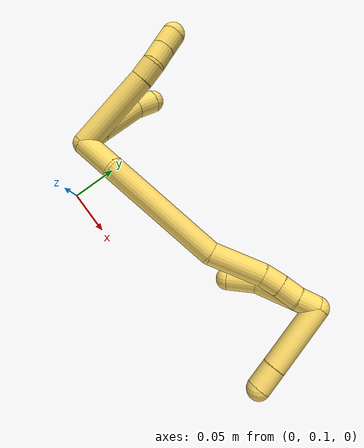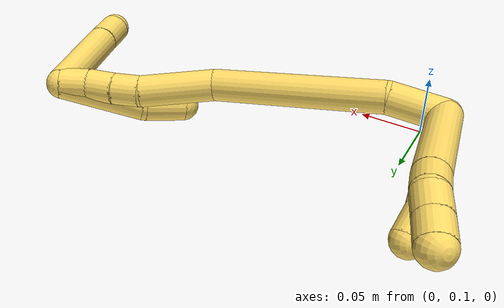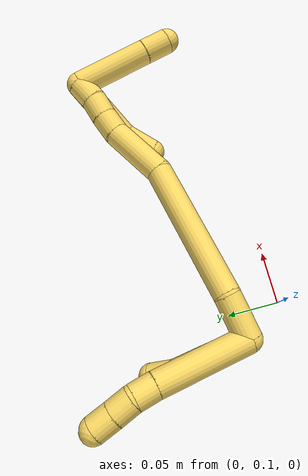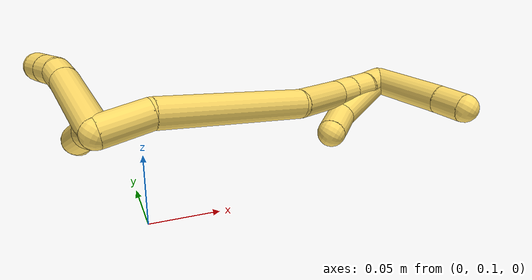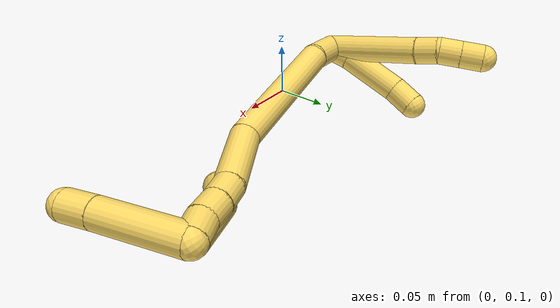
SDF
<sdf version="1.7">
 <world name="default">
  <model name="5">
   <static>0</static>
   <link name="5">
    <collision name="collision-cylinder-e_1_2_8">
     <pose>0.027077 0.011598 0.033615 -0.332237 0.650799 -0.113017</pose>
     <geometry><cylinder><radius>0.0125</radius><length>0.089391</length></cylinder></geometry>
     <surface>
      <friction><ode><mu>1.16</mu><mu2>1.16</mu2><slip1>0</slip1><slip2>0</slip2></ode></friction>
      <contact><ode><kp>1e+06</kp><kd>1</kd><max_vel>0</max_vel><min_depth>0.001</min_depth></ode></contact>
     </surface>
    </collision>
    <visual name="visual-cylinder-e_1_2_8">
     <pose>0.027077 0.011598 0.033615 -0.332237 0.650799 -0.113017</pose>
     <geometry><cylinder><radius>0.0125</radius><length>0.089391</length></cylinder></geometry>
     <material><ambient>1 0.858824 0.4 1</ambient></material>
    </visual>
    <collision name="collision-cylinder-e_2_8_9">
     <pose>0.059717 0.025919 0.07544 -0.320227 0.571451 -0.094812</pose>
     <geometry><cylinder><radius>0.0125</radius><length>0.020568</length></cylinder></geometry>
     <surface>
      <friction><ode><mu>1.16</mu><mu2>1.16</mu2><slip1>0</slip1><slip2>0</slip2></ode></friction>
      <contact><ode><kp>1e+06</kp><kd>1</kd><max_vel>0</max_vel><min_depth>0.001</min_depth></ode></contact>
     </surface>
    </collision>
    <visual name="visual-cylinder-e_2_8_9">
     <pose>0.059717 0.025919 0.07544 -0.320227 0.571451 -0.094812</pose>
     <geometry><cylinder><radius>0.0125</radius><length>0.020568</length></cylinder></geometry>
     <material><ambient>1 0.858824 0.4 1</ambient></material>
    </visual>
    <collision name="collision-cylinder-e_3_9_10">
     <pose>0.069115 0.033777 0.091351 -0.5881 0.392881 -0.120384</pose>
     <geometry><cylinder><radius>0.0125</radius><length>0.020037</length></cylinder></geometry>
     <surface>
      <friction><ode><mu>1.16</mu><mu2>1.16</mu2><slip1>0</slip1><slip2>0</slip2></ode></friction>
      <contact><ode><kp>1e+06</kp><kd>1</kd><max_vel>0</max_vel><min_depth>0.001</min_depth></ode></contact>
     </surface>
    </collision>
    <visual name="visual-cylinder-e_3_9_10">
     <pose>0.069115 0.033777 0.091351 -0.5881 0.392881 -0.120384</pose>
     <geometry><cylinder><radius>0.0125</radius><length>0.020037</length></cylinder></geometry>
     <material><ambient>1 0.858824 0.4 1</ambient></material>
    </visual>
    <collision name="collision-cylinder-e_4_10_6">
     <pose>0.076975 0.043993 0.106668 -0.588372 0.414115 -0.12712</pose>
     <geometry><cylinder><radius>0.0125</radius><length>0.020004</length></cylinder></geometry>
     <surface>
      <friction><ode><mu>1.16</mu><mu2>1.16</mu2><slip1>0</slip1><slip2>0</slip2></ode></friction>
      <contact><ode><kp>1e+06</kp><kd>1</kd><max_vel>0</max_vel><min_depth>0.001</min_depth></ode></contact>
     </surface>
    </collision>
    <visual name="visual-cylinder-e_4_10_6">
     <pose>0.076975 0.043993 0.106668 -0.588372 0.414115 -0.12712</pose>
     <geometry><cylinder><radius>0.0125</radius><length>0.020004</length></cylinder></geometry>
     <material><ambient>1 0.858824 0.4 1</ambient></material>
    </visual>
    <collision name="collision-cylinder-e_1_2_11">
     <pose>0.00545 0.006924 0.00567 -0.884623 0.547007 -0.264178</pose>
     <geometry><cylinder><radius>0.0125</radius><length>0.020957</length></cylinder></geometry>
     <surface>
      <friction><ode><mu>1.16</mu><mu2>1.16</mu2><slip1>0</slip1><slip2>0</slip2></ode></friction>
      <contact><ode><kp>1e+06</kp><kd>1</kd><max_vel>0</max_vel><min_depth>0.001</min_depth></ode></contact>
     </surface>
    </collision>
    <visual name="visual-cylinder-e_1_2_11">
     <pose>0.00545 0.006924 0.00567 -0.884623 0.547007 -0.264178</pose>
     <geometry><cylinder><radius>0.0125</radius><length>0.020957</length></cylinder></geometry>
     <material><ambient>1 0.858824 0.4 1</ambient></material>
    </visual>
    <collision name="collision-cylinder-e_2_11_12">
     <pose>0.024495 0.034711 0.023218 -1.05323 0.515258 -0.304006</pose>
     <geometry><cylinder><radius>0.0125</radius><length>0.05518</length></cylinder></geometry>
     <surface>
      <friction><ode><mu>1.16</mu><mu2>1.16</mu2><slip1>0</slip1><slip2>0</slip2></ode></friction>
      <contact><ode><kp>1e+06</kp><kd>1</kd><max_vel>0</max_vel><min_depth>0.001</min_depth></ode></contact>
     </surface>
    </collision>
    <visual name="visual-cylinder-e_2_11_12">
     <pose>0.024495 0.034711 0.023218 -1.05323 0.515258 -0.304006</pose>
     <geometry><cylinder><radius>0.0125</radius><length>0.05518</length></cylinder></geometry>
     <material><ambient>1 0.858824 0.4 1</ambient></material>
    </visual>
    <collision name="collision-cylinder-e_3_12_5">
     <pose>0.045986 0.063841 0.038517 -1.17846 0.723133 -0.495223</pose>
     <geometry><cylinder><radius>0.0125</radius><length>0.023864</length></cylinder></geometry>
     <surface>
      <friction><ode><mu>1.16</mu><mu2>1.16</mu2><slip1>0</slip1><slip2>0</slip2></ode></friction>
      <contact><ode><kp>1e+06</kp><kd>1</kd><max_vel>0</max_vel><min_depth>0.001</min_depth></ode></contact>
     </surface>
    </collision>
    <visual name="visual-cylinder-e_3_12_5">
     <pose>0.045986 0.063841 0.038517 -1.17846 0.723133 -0.495223</pose>
     <geometry><cylinder><radius>0.0125</radius><length>0.023864</length></cylinder></geometry>
     <material><ambient>1 0.858824 0.4 1</ambient></material>
    </visual>
    <collision name="collision-cylinder-e_1_2_13">
     <pose>0.017157 -0.006171 -0.010467 2.60886 0.954606 2.17068</pose>
     <geometry><cylinder><radius>0.0125</radius><length>0.042048</length></cylinder></geometry>
     <surface>
      <friction><ode><mu>1.16</mu><mu2>1.16</mu2><slip1>0</slip1><slip2>0</slip2></ode></friction>
      <contact><ode><kp>1e+06</kp><kd>1</kd><max_vel>0</max_vel><min_depth>0.001</min_depth></ode></contact>
     </surface>
    </collision>
    <visual name="visual-cylinder-e_1_2_13">
     <pose>0.017157 -0.006171 -0.010467 2.60886 0.954606 2.17068</pose>
     <geometry><cylinder><radius>0.0125</radius><length>0.042048</length></cylinder></geometry>
     <material><ambient>1 0.858824 0.4 1</ambient></material>
    </visual>
    <collision name="collision-cylinder-e_2_13_14">
     <pose>0.087511 -0.015535 -0.061496 3.06304 0.917847 2.98287</pose>
     <geometry><cylinder><radius>0.0125</radius><length>0.133945</length></cylinder></geometry>
     <surface>
      <friction><ode><mu>1.16</mu><mu2>1.16</mu2><slip1>0</slip1><slip2>0</slip2></ode></friction>
      <contact><ode><kp>1e+06</kp><kd>1</kd><max_vel>0</max_vel><min_depth>0.001</min_depth></ode></contact>
     </surface>
    </collision>
    <visual name="visual-cylinder-e_2_13_14">
     <pose>0.087511 -0.015535 -0.061496 3.06304 0.917847 2.98287</pose>
     <geometry><cylinder><radius>0.0125</radius><length>0.133945</length></cylinder></geometry>
     <material><ambient>1 0.858824 0.4 1</ambient></material>
    </visual>
    <collision name="collision-cylinder-e_3_14_15">
     <pose>0.168478 -0.016547 -0.11211 -2.92794 1.21611 -2.83586</pose>
     <geometry><cylinder><radius>0.0125</radius><length>0.05923</length></cylinder></geometry>
     <surface>
      <friction><ode><mu>1.16</mu><mu2>1.16</mu2><slip1>0</slip1><slip2>0</slip2></ode></friction>
      <contact><ode><kp>1e+06</kp><kd>1</kd><max_vel>0</max_vel><min_depth>0.001</min_depth></ode></contact>
     </surface>
    </collision>
    <visual name="visual-cylinder-e_3_14_15">
     <pose>0.168478 -0.016547 -0.11211 -2.92794 1.21611 -2.83586</pose>
     <geometry><cylinder><radius>0.0125</radius><length>0.05923</length></cylinder></geometry>
     <material><ambient>1 0.858824 0.4 1</ambient></material>
    </visual>
    <collision name="collision-cylinder-e_4_15_16">
     <pose>0.205677 -0.015444 -0.126875 2.91685 1.09686 2.7763</pose>
     <geometry><cylinder><radius>0.0125</radius><length>0.02119</length></cylinder></geometry>
     <surface>
      <friction><ode><mu>1.16</mu><mu2>1.16</mu2><slip1>0</slip1><slip2>0</slip2></ode></friction>
      <contact><ode><kp>1e+06</kp><kd>1</kd><max_vel>0</max_vel><min_depth>0.001</min_depth></ode></contact>
     </surface>
    </collision>
    <visual name="visual-cylinder-e_4_15_16">
     <pose>0.205677 -0.015444 -0.126875 2.91685 1.09686 2.7763</pose>
     <geometry><cylinder><radius>0.0125</radius><length>0.02119</length></cylinder></geometry>
     <material><ambient>1 0.858824 0.4 1</ambient></material>
    </visual>
    <collision name="collision-cylinder-e_5_16_17">
     <pose>0.224297 -0.018135 -0.13684 2.8435 1.03218 2.62415</pose>
     <geometry><cylinder><radius>0.0125</radius><length>0.021419</length></cylinder></geometry>
     <surface>
      <friction><ode><mu>1.16</mu><mu2>1.16</mu2><slip1>0</slip1><slip2>0</slip2></ode></friction>
      <contact><ode><kp>1e+06</kp><kd>1</kd><max_vel>0</max_vel><min_depth>0.001</min_depth></ode></contact>
     </surface>
    </collision>
    <visual name="visual-cylinder-e_5_16_17">
     <pose>0.224297 -0.018135 -0.13684 2.8435 1.03218 2.62415</pose>
     <geometry><cylinder><radius>0.0125</radius><length>0.021419</length></cylinder></geometry>
     <material><ambient>1 0.858824 0.4 1</ambient></material>
    </visual>
    <collision name="collision-cylinder-e_6_17_1">
     <pose>0.243878 -0.020397 -0.145903 2.97305 1.21448 2.89964</pose>
     <geometry><cylinder><radius>0.0125</radius><length>0.022168</length></cylinder></geometry>
     <surface>
      <friction><ode><mu>1.16</mu><mu2>1.16</mu2><slip1>0</slip1><slip2>0</slip2></ode></friction>
      <contact><ode><kp>1e+06</kp><kd>1</kd><max_vel>0</max_vel><min_depth>0.001</min_depth></ode></contact>
     </surface>
    </collision>
    <visual name="visual-cylinder-e_6_17_1">
     <pose>0.243878 -0.020397 -0.145903 2.97305 1.21448 2.89964</pose>
     <geometry><cylinder><radius>0.0125</radius><length>0.022168</length></cylinder></geometry>
     <material><ambient>1 0.858824 0.4 1</ambient></material>
    </visual>
    <collision name="collision-cylinder-e_1_1_18">
     <pose>0.234667 -0.036566 -0.177069 2.6255 -0.557285 -1.65132</pose>
     <geometry><cylinder><radius>0.0125</radius><length>0.074115</length></cylinder></geometry>
     <surface>
      <friction><ode><mu>1.16</mu><mu2>1.16</mu2><slip1>0</slip1><slip2>0</slip2></ode></friction>
      <contact><ode><kp>1e+06</kp><kd>1</kd><max_vel>0</max_vel><min_depth>0.001</min_depth></ode></contact>
     </surface>
    </collision>
    <visual name="visual-cylinder-e_1_1_18">
     <pose>0.234667 -0.036566 -0.177069 2.6255 -0.557285 -1.65132</pose>
     <geometry><cylinder><radius>0.0125</radius><length>0.074115</length></cylinder></geometry>
     <material><ambient>1 0.858824 0.4 1</ambient></material>
    </visual>
    <collision name="collision-cylinder-e_2_18_4">
     <pose>0.208221 -0.057159 -0.214165 2.66148 -0.557405 -1.72634</pose>
     <geometry><cylinder><radius>0.0125</radius><length>0.025885</length></cylinder></geometry>
     <surface>
      <friction><ode><mu>1.16</mu><mu2>1.16</mu2><slip1>0</slip1><slip2>0</slip2></ode></friction>
      <contact><ode><kp>1e+06</kp><kd>1</kd><max_vel>0</max_vel><min_depth>0.001</min_depth></ode></contact>
     </surface>
    </collision>
    <visual name="visual-cylinder-e_2_18_4">
     <pose>0.208221 -0.057159 -0.214165 2.66148 -0.557405 -1.72634</pose>
     <geometry><cylinder><radius>0.0125</radius><length>0.025885</length></cylinder></geometry>
     <material><ambient>1 0.858824 0.4 1</ambient></material>
    </visual>
    <collision name="collision-cylinder-e_1_1_19">
     <pose>0.222687 -0.011051 -0.143223 -0.994736 -1.20994 0.718216</pose>
     <geometry><cylinder><radius>0.0125</radius><length>0.067506</length></cylinder></geometry>
     <surface>
      <friction><ode><mu>1.16</mu><mu2>1.16</mu2><slip1>0</slip1><slip2>0</slip2></ode></friction>
      <contact><ode><kp>1e+06</kp><kd>1</kd><max_vel>0</max_vel><min_depth>0.001</min_depth></ode></contact>
     </surface>
    </collision>
    <visual name="visual-cylinder-e_1_1_19">
     <pose>0.222687 -0.011051 -0.143223 -0.994736 -1.20994 0.718216</pose>
     <geometry><cylinder><radius>0.0125</radius><length>0.067506</length></cylinder></geometry>
     <material><ambient>1 0.858824 0.4 1</ambient></material>
    </visual>
    <collision name="collision-cylinder-e_2_19_3">
     <pose>0.174895 -8.6e-05 -0.137123 -1.95438 -1.5063 1.89384</pose>
     <geometry><cylinder><radius>0.0125</radius><length>0.032494</length></cylinder></geometry>
     <surface>
      <friction><ode><mu>1.16</mu><mu2>1.16</mu2><slip1>0</slip1><slip2>0</slip2></ode></friction>
      <contact><ode><kp>1e+06</kp><kd>1</kd><max_vel>0</max_vel><min_depth>0.001</min_depth></ode></contact>
     </surface>
    </collision>
    <visual name="visual-cylinder-e_2_19_3">
     <pose>0.174895 -8.6e-05 -0.137123 -1.95438 -1.5063 1.89384</pose>
     <geometry><cylinder><radius>0.0125</radius><length>0.032494</length></cylinder></geometry>
     <material><ambient>1 0.858824 0.4 1</ambient></material>
    </visual>
    <collision name="collision-sphere-3">
     <pose>0.158682 0.000885 -0.137515 0 -0 0</pose>
     <geometry><sphere><radius>0.0125</radius></sphere></geometry>
     <surface>
      <friction><ode><mu>1.16</mu><mu2>1.16</mu2><slip1>0</slip1><slip2>0</slip2></ode></friction>
      <contact><ode><kp>1e+06</kp><kd>1</kd><max_vel>0</max_vel><min_depth>0.001</min_depth></ode></contact>
     </surface>
    </collision>
    <visual name="visual-sphere-3">
     <pose>0.158682 0.000885 -0.137515 0 -0 0</pose>
     <geometry><sphere><radius>0.0125</radius></sphere></geometry>
     <material><ambient>1 0.858824 0.4 1</ambient></material>
    </visual>
    <collision name="collision-sphere-19">
     <pose>0.191108 -0.001057 -0.136731 0 -0 0</pose>
     <geometry><sphere><radius>0.0125</radius></sphere></geometry>
     <surface>
      <friction><ode><mu>1.16</mu><mu2>1.16</mu2><slip1>0</slip1><slip2>0</slip2></ode></friction>
      <contact><ode><kp>1e+06</kp><kd>1</kd><max_vel>0</max_vel><min_depth>0.001</min_depth></ode></contact>
     </surface>
    </collision>
    <visual name="visual-sphere-19">
     <pose>0.191108 -0.001057 -0.136731 0 -0 0</pose>
     <geometry><sphere><radius>0.0125</radius></sphere></geometry>
     <material><ambient>1 0.858824 0.4 1</ambient></material>
    </visual>
    <collision name="collision-sphere-11">
     <pose>0.0109 0.013848 0.01134 0 -0 0</pose>
     <geometry><sphere><radius>0.0125</radius></sphere></geometry>
     <surface>
      <friction><ode><mu>1.16</mu><mu2>1.16</mu2><slip1>0</slip1><slip2>0</slip2></ode></friction>
      <contact><ode><kp>1e+06</kp><kd>1</kd><max_vel>0</max_vel><min_depth>0.001</min_depth></ode></contact>
     </surface>
    </collision>
    <visual name="visual-sphere-11">
     <pose>0.0109 0.013848 0.01134 0 -0 0</pose>
     <geometry><sphere><radius>0.0125</radius></sphere></geometry>
     <material><ambient>1 0.858824 0.4 1</ambient></material>
    </visual>
    <collision name="collision-sphere-6">
     <pose>0.081 0.049075 0.114285 0 -0 0</pose>
     <geometry><sphere><radius>0.0125</radius></sphere></geometry>
     <surface>
      <friction><ode><mu>1.16</mu><mu2>1.16</mu2><slip1>0</slip1><slip2>0</slip2></ode></friction>
      <contact><ode><kp>1e+06</kp><kd>1</kd><max_vel>0</max_vel><min_depth>0.001</min_depth></ode></contact>
     </surface>
    </collision>
    <visual name="visual-sphere-6">
     <pose>0.081 0.049075 0.114285 0 -0 0</pose>
     <geometry><sphere><radius>0.0125</radius></sphere></geometry>
     <material><ambient>1 0.858824 0.4 1</ambient></material>
    </visual>
    <collision name="collision-sphere-10">
     <pose>0.07295 0.038911 0.099051 0 -0 0</pose>
     <geometry><sphere><radius>0.0125</radius></sphere></geometry>
     <surface>
      <friction><ode><mu>1.16</mu><mu2>1.16</mu2><slip1>0</slip1><slip2>0</slip2></ode></friction>
      <contact><ode><kp>1e+06</kp><kd>1</kd><max_vel>0</max_vel><min_depth>0.001</min_depth></ode></contact>
     </surface>
    </collision>
    <visual name="visual-sphere-10">
     <pose>0.07295 0.038911 0.099051 0 -0 0</pose>
     <geometry><sphere><radius>0.0125</radius></sphere></geometry>
     <material><ambient>1 0.858824 0.4 1</ambient></material>
    </visual>
    <collision name="collision-sphere-9">
     <pose>0.065279 0.028642 0.08365 0 -0 0</pose>
     <geometry><sphere><radius>0.0125</radius></sphere></geometry>
     <surface>
      <friction><ode><mu>1.16</mu><mu2>1.16</mu2><slip1>0</slip1><slip2>0</slip2></ode></friction>
      <contact><ode><kp>1e+06</kp><kd>1</kd><max_vel>0</max_vel><min_depth>0.001</min_depth></ode></contact>
     </surface>
    </collision>
    <visual name="visual-sphere-9">
     <pose>0.065279 0.028642 0.08365 0 -0 0</pose>
     <geometry><sphere><radius>0.0125</radius></sphere></geometry>
     <material><ambient>1 0.858824 0.4 1</ambient></material>
    </visual>
    <collision name="collision-sphere-2">
     <geometry><sphere><radius>0.0125</radius></sphere></geometry>
     <surface>
      <friction><ode><mu>1.16</mu><mu2>1.16</mu2><slip1>0</slip1><slip2>0</slip2></ode></friction>
      <contact><ode><kp>1e+06</kp><kd>1</kd><max_vel>0</max_vel><min_depth>0.001</min_depth></ode></contact>
     </surface>
    </collision>
    <visual name="visual-sphere-2">
     <geometry><sphere><radius>0.0125</radius></sphere></geometry>
     <material><ambient>1 0.858824 0.4 1</ambient></material>
    </visual>
    <collision name="collision-sphere-8">
     <pose>0.054155 0.023196 0.06723 0 -0 0</pose>
     <geometry><sphere><radius>0.0125</radius></sphere></geometry>
     <surface>
      <friction><ode><mu>1.16</mu><mu2>1.16</mu2><slip1>0</slip1><slip2>0</slip2></ode></friction>
      <contact><ode><kp>1e+06</kp><kd>1</kd><max_vel>0</max_vel><min_depth>0.001</min_depth></ode></contact>
     </surface>
    </collision>
    <visual name="visual-sphere-8">
     <pose>0.054155 0.023196 0.06723 0 -0 0</pose>
     <geometry><sphere><radius>0.0125</radius></sphere></geometry>
     <material><ambient>1 0.858824 0.4 1</ambient></material>
    </visual>
    <collision name="collision-sphere-12">
     <pose>0.038091 0.055575 0.035097 0 -0 0</pose>
     <geometry><sphere><radius>0.0125</radius></sphere></geometry>
     <surface>
      <friction><ode><mu>1.16</mu><mu2>1.16</mu2><slip1>0</slip1><slip2>0</slip2></ode></friction>
      <contact><ode><kp>1e+06</kp><kd>1</kd><max_vel>0</max_vel><min_depth>0.001</min_depth></ode></contact>
     </surface>
    </collision>
    <visual name="visual-sphere-12">
     <pose>0.038091 0.055575 0.035097 0 -0 0</pose>
     <geometry><sphere><radius>0.0125</radius></sphere></geometry>
     <material><ambient>1 0.858824 0.4 1</ambient></material>
    </visual>
    <collision name="collision-sphere-5">
     <pose>0.053882 0.072107 0.041937 0 -0 0</pose>
     <geometry><sphere><radius>0.0125</radius></sphere></geometry>
     <surface>
      <friction><ode><mu>1.16</mu><mu2>1.16</mu2><slip1>0</slip1><slip2>0</slip2></ode></friction>
      <contact><ode><kp>1e+06</kp><kd>1</kd><max_vel>0</max_vel><min_depth>0.001</min_depth></ode></contact>
     </surface>
    </collision>
    <visual name="visual-sphere-5">
     <pose>0.053882 0.072107 0.041937 0 -0 0</pose>
     <geometry><sphere><radius>0.0125</radius></sphere></geometry>
     <material><ambient>1 0.858824 0.4 1</ambient></material>
    </visual>
    <collision name="collision-sphere-13">
     <pose>0.034315 -0.012342 -0.020933 0 -0 0</pose>
     <geometry><sphere><radius>0.0125</radius></sphere></geometry>
     <surface>
      <friction><ode><mu>1.16</mu><mu2>1.16</mu2><slip1>0</slip1><slip2>0</slip2></ode></friction>
      <contact><ode><kp>1e+06</kp><kd>1</kd><max_vel>0</max_vel><min_depth>0.001</min_depth></ode></contact>
     </surface>
    </collision>
    <visual name="visual-sphere-13">
     <pose>0.034315 -0.012342 -0.020933 0 -0 0</pose>
     <geometry><sphere><radius>0.0125</radius></sphere></geometry>
     <material><ambient>1 0.858824 0.4 1</ambient></material>
    </visual>
    <collision name="collision-sphere-14">
     <pose>0.140707 -0.018728 -0.102058 0 -0 0</pose>
     <geometry><sphere><radius>0.0125</radius></sphere></geometry>
     <surface>
      <friction><ode><mu>1.16</mu><mu2>1.16</mu2><slip1>0</slip1><slip2>0</slip2></ode></friction>
      <contact><ode><kp>1e+06</kp><kd>1</kd><max_vel>0</max_vel><min_depth>0.001</min_depth></ode></contact>
     </surface>
    </collision>
    <visual name="visual-sphere-14">
     <pose>0.140707 -0.018728 -0.102058 0 -0 0</pose>
     <geometry><sphere><radius>0.0125</radius></sphere></geometry>
     <material><ambient>1 0.858824 0.4 1</ambient></material>
    </visual>
    <collision name="collision-sphere-15">
     <pose>0.19625 -0.014366 -0.122161 0 -0 0</pose>
     <geometry><sphere><radius>0.0125</radius></sphere></geometry>
     <surface>
      <friction><ode><mu>1.16</mu><mu2>1.16</mu2><slip1>0</slip1><slip2>0</slip2></ode></friction>
      <contact><ode><kp>1e+06</kp><kd>1</kd><max_vel>0</max_vel><min_depth>0.001</min_depth></ode></contact>
     </surface>
    </collision>
    <visual name="visual-sphere-15">
     <pose>0.19625 -0.014366 -0.122161 0 -0 0</pose>
     <geometry><sphere><radius>0.0125</radius></sphere></geometry>
     <material><ambient>1 0.858824 0.4 1</ambient></material>
    </visual>
    <collision name="collision-sphere-16">
     <pose>0.215104 -0.016521 -0.131589 0 -0 0</pose>
     <geometry><sphere><radius>0.0125</radius></sphere></geometry>
     <surface>
      <friction><ode><mu>1.16</mu><mu2>1.16</mu2><slip1>0</slip1><slip2>0</slip2></ode></friction>
      <contact><ode><kp>1e+06</kp><kd>1</kd><max_vel>0</max_vel><min_depth>0.001</min_depth></ode></contact>
     </surface>
    </collision>
    <visual name="visual-sphere-16">
     <pose>0.215104 -0.016521 -0.131589 0 -0 0</pose>
     <geometry><sphere><radius>0.0125</radius></sphere></geometry>
     <material><ambient>1 0.858824 0.4 1</ambient></material>
    </visual>
    <collision name="collision-sphere-17">
     <pose>0.233491 -0.019748 -0.142091 0 -0 0</pose>
     <geometry><sphere><radius>0.0125</radius></sphere></geometry>
     <surface>
      <friction><ode><mu>1.16</mu><mu2>1.16</mu2><slip1>0</slip1><slip2>0</slip2></ode></friction>
      <contact><ode><kp>1e+06</kp><kd>1</kd><max_vel>0</max_vel><min_depth>0.001</min_depth></ode></contact>
     </surface>
    </collision>
    <visual name="visual-sphere-17">
     <pose>0.233491 -0.019748 -0.142091 0 -0 0</pose>
     <geometry><sphere><radius>0.0125</radius></sphere></geometry>
     <material><ambient>1 0.858824 0.4 1</ambient></material>
    </visual>
    <collision name="collision-sphere-1">
     <pose>0.254266 -0.021045 -0.149714 0 -0 0</pose>
     <geometry><sphere><radius>0.0125</radius></sphere></geometry>
     <surface>
      <friction><ode><mu>1.16</mu><mu2>1.16</mu2><slip1>0</slip1><slip2>0</slip2></ode></friction>
      <contact><ode><kp>1e+06</kp><kd>1</kd><max_vel>0</max_vel><min_depth>0.001</min_depth></ode></contact>
     </surface>
    </collision>
    <visual name="visual-sphere-1">
     <pose>0.254266 -0.021045 -0.149714 0 -0 0</pose>
     <geometry><sphere><radius>0.0125</radius></sphere></geometry>
     <material><ambient>1 0.858824 0.4 1</ambient></material>
    </visual>
    <collision name="collision-sphere-18">
     <pose>0.215068 -0.052086 -0.204423 0 -0 0</pose>
     <geometry><sphere><radius>0.0125</radius></sphere></geometry>
     <surface>
      <friction><ode><mu>1.16</mu><mu2>1.16</mu2><slip1>0</slip1><slip2>0</slip2></ode></friction>
      <contact><ode><kp>1e+06</kp><kd>1</kd><max_vel>0</max_vel><min_depth>0.001</min_depth></ode></contact>
     </surface>
    </collision>
    <visual name="visual-sphere-18">
     <pose>0.215068 -0.052086 -0.204423 0 -0 0</pose>
     <geometry><sphere><radius>0.0125</radius></sphere></geometry>
     <material><ambient>1 0.858824 0.4 1</ambient></material>
    </visual>
    <collision name="collision-sphere-4">
     <pose>0.201375 -0.062232 -0.223906 0 -0 0</pose>
     <geometry><sphere><radius>0.0125</radius></sphere></geometry>
     <surface>
      <friction><ode><mu>1.16</mu><mu2>1.16</mu2><slip1>0</slip1><slip2>0</slip2></ode></friction>
      <contact><ode><kp>1e+06</kp><kd>1</kd><max_vel>0</max_vel><min_depth>0.001</min_depth></ode></contact>
     </surface>
    </collision>
    <visual name="visual-sphere-4">
     <pose>0.201375 -0.062232 -0.223906 0 -0 0</pose>
     <geometry><sphere><radius>0.0125</radius></sphere></geometry>
     <material><ambient>1 0.858824 0.4 1</ambient></material>
    </visual>
    <inertial>
     <pose>0.119501 -0.003621 -0.061497 0 -0 0</pose>
     <mass>0.75</mass>
     <inertia>
      <ixx>-5.7e-05</ixx>
      <ixy>0</ixy>
      <ixz>0</ixz>
      <iyy>0.000346</iyy>
      <iyz>0</iyz>
      <izz>-0.00021</izz>
     </inertia>
    </inertial>
   </link>
   <pose>-0.025014 0.144694 0.052138 -1.12908 -0.117029 0.815118</pose>
  </model>
 </world>
</sdf>
